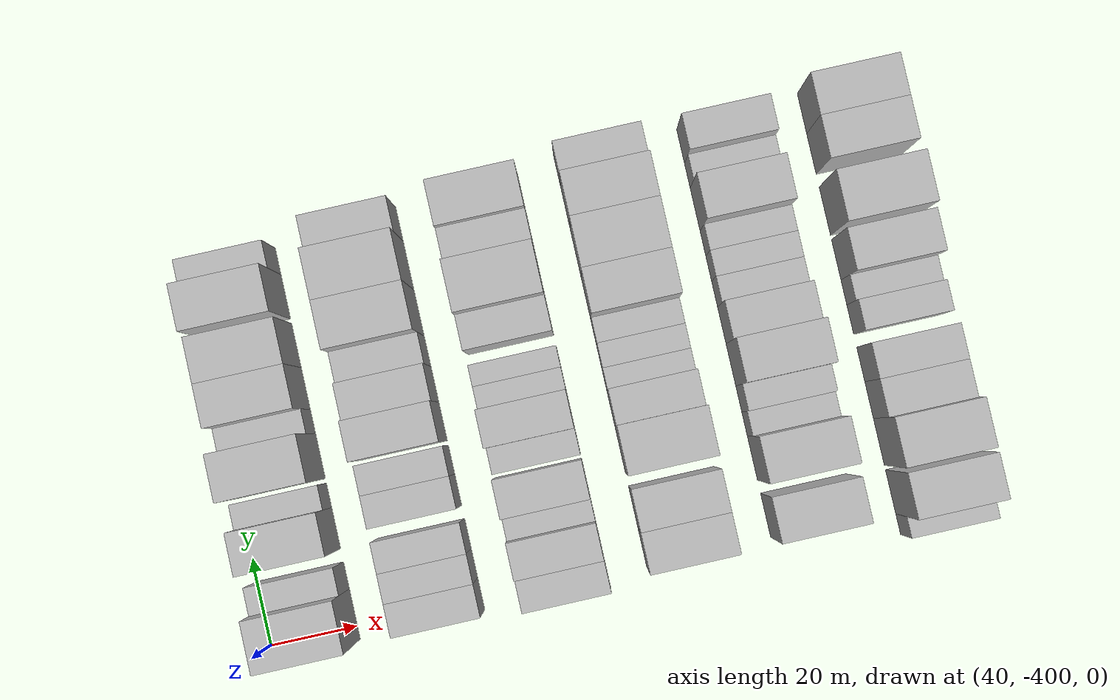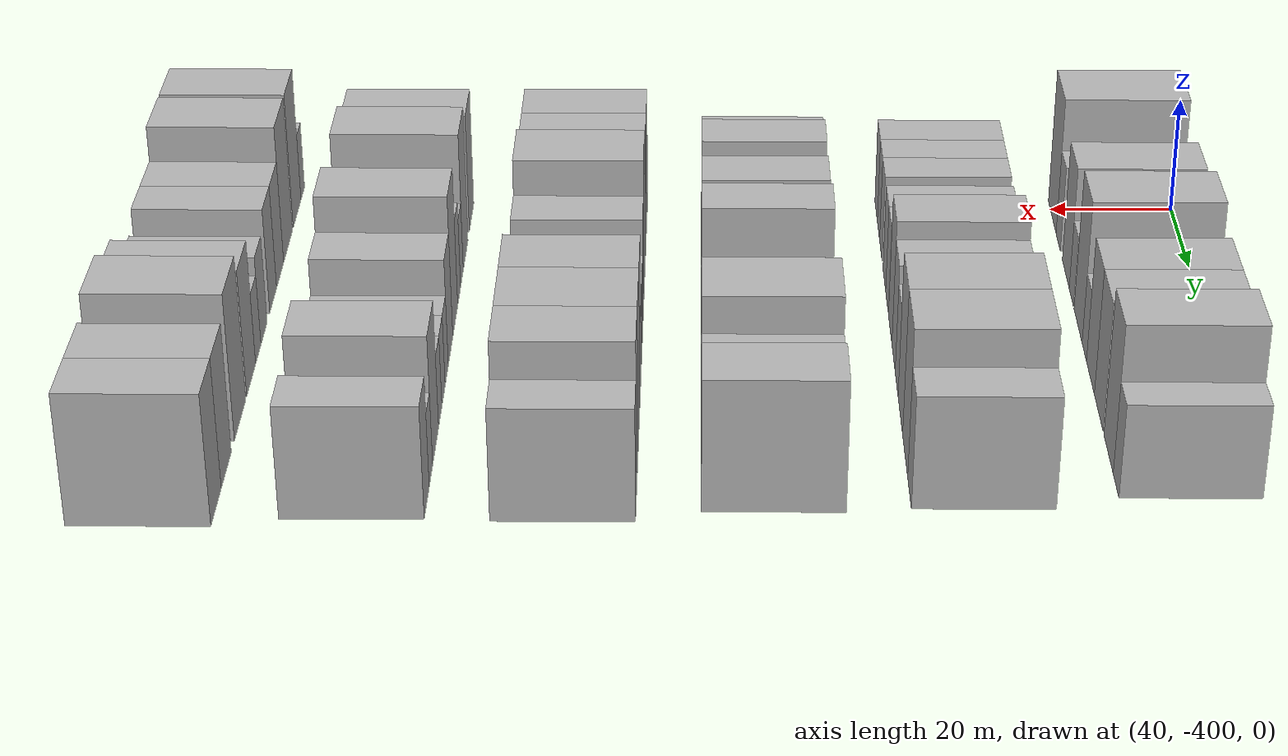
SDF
<sdf version="1.6">
 <world name="default">
  <model name="building_13">
   <static>1</static>
   <pose>50.0000 -397.2692 0 0.000000 0.000000 0.000000</pose>
   <link name="link">
    <pose>0 0 12.00 0 0 0</pose>
    <collision name="collision"><geometry><box><size>20.0000 11.6706 24.0000</size></box></geometry></collision>
    <visual name="visual">
     <cast_shadows>0</cast_shadows>
     <geometry><box><size>20.0000 11.6706 24.0000</size></box></geometry>
     <material>
      <script>
       <uri>model://HANNAS_wall/materials/scripts</uri>
       <uri>model://HANNAS_wall/materials/textures</uri>
       <name>vrc/HANNAS_wall</name>
      </script>
     </material>
    </visual>
   </link>
  </model>
  <model name="building_14">
   <static>1</static>
   <pose>50.0000 -388.3033 0 0.000000 0.000000 0.000000</pose>
   <link name="link">
    <pose>0 0 7.50 0 0 0</pose>
    <collision name="collision"><geometry><box><size>20.0000 6.2612 15.0000</size></box></geometry></collision>
    <visual name="visual">
     <cast_shadows>0</cast_shadows>
     <geometry><box><size>20.0000 6.2612 15.0000</size></box></geometry>
     <material>
      <script>
       <uri>model://HANNAS_wall/materials/scripts</uri>
       <uri>model://HANNAS_wall/materials/textures</uri>
       <name>vrc/HANNAS_wall</name>
      </script>
     </material>
    </visual>
   </link>
  </model>
  <model name="building_15">
   <static>1</static>
   <pose>50.0000 -377.3588 0 0.000000 0.000000 0.000000</pose>
   <link name="link">
    <pose>0 0 10.50 0 0 0</pose>
    <collision name="collision"><geometry><box><size>20.0000 9.6278 21.0000</size></box></geometry></collision>
    <visual name="visual">
     <cast_shadows>0</cast_shadows>
     <geometry><box><size>20.0000 9.6278 21.0000</size></box></geometry>
     <material>
      <script>
       <uri>model://HANNAS_wall/materials/scripts</uri>
       <uri>model://HANNAS_wall/materials/textures</uri>
       <name>vrc/HANNAS_wall</name>
      </script>
     </material>
    </visual>
   </link>
  </model>
  <model name="building_16">
   <static>1</static>
   <pose>50.0000 -369.7086 0 0.000000 0.000000 0.000000</pose>
   <link name="link">
    <pose>0 0 6.00 0 0 0</pose>
    <collision name="collision"><geometry><box><size>20.0000 5.6726 12.0000</size></box></geometry></collision>
    <visual name="visual">
     <cast_shadows>0</cast_shadows>
     <geometry><box><size>20.0000 5.6726 12.0000</size></box></geometry>
     <material>
      <script>
       <uri>model://HANNAS_wall/materials/scripts</uri>
       <uri>model://HANNAS_wall/materials/textures</uri>
       <name>vrc/HANNAS_wall</name>
      </script>
     </material>
    </visual>
   </link>
  </model>
  <model name="building_17">
   <static>1</static>
   <pose>50.0000 -360.5614 0 0.000000 0.000000 0.000000</pose>
   <link name="link">
    <pose>0 0 12.00 0 0 0</pose>
    <collision name="collision"><geometry><box><size>20.0000 10.6218 24.0000</size></box></geometry></collision>
    <visual name="visual">
     <cast_shadows>0</cast_shadows>
     <geometry><box><size>20.0000 10.6218 24.0000</size></box></geometry>
     <material>
      <script>
       <uri>model://HANNAS_wall/materials/scripts</uri>
       <uri>model://HANNAS_wall/materials/textures</uri>
       <name>vrc/HANNAS_wall</name>
      </script>
     </material>
    </visual>
   </link>
  </model>
  <model name="building_18">
   <static>1</static>
   <pose>50.0000 -352.4591 0 0.000000 0.000000 0.000000</pose>
   <link name="link">
    <pose>0 0 6.00 0 0 0</pose>
    <collision name="collision"><geometry><box><size>20.0000 5.5828 12.0000</size></box></geometry></collision>
    <visual name="visual">
     <cast_shadows>0</cast_shadows>
     <geometry><box><size>20.0000 5.5828 12.0000</size></box></geometry>
     <material>
      <script>
       <uri>model://HANNAS_wall/materials/scripts</uri>
       <uri>model://HANNAS_wall/materials/textures</uri>
       <name>vrc/HANNAS_wall</name>
      </script>
     </material>
    </visual>
   </link>
  </model>
  <model name="building_19">
   <static>1</static>
   <pose>50.0000 -344.7563 0 0.000000 0.000000 0.000000</pose>
   <link name="link">
    <pose>0 0 10.50 0 0 0</pose>
    <collision name="collision"><geometry><box><size>20.0000 9.8227 21.0000</size></box></geometry></collision>
    <visual name="visual">
     <cast_shadows>0</cast_shadows>
     <geometry><box><size>20.0000 9.8227 21.0000</size></box></geometry>
     <material>
      <script>
       <uri>model://HANNAS_wall/materials/scripts</uri>
       <uri>model://HANNAS_wall/materials/textures</uri>
       <name>vrc/HANNAS_wall</name>
      </script>
     </material>
    </visual>
   </link>
  </model>
  <model name="building_20">
   <static>1</static>
   <pose>50.0000 -334.6631 0 0.000000 0.000000 0.000000</pose>
   <link name="link">
    <pose>0 0 10.50 0 0 0</pose>
    <collision name="collision"><geometry><box><size>20.0000 10.3638 21.0000</size></box></geometry></collision>
    <visual name="visual">
     <cast_shadows>0</cast_shadows>
     <geometry><box><size>20.0000 10.3638 21.0000</size></box></geometry>
     <material>
      <script>
       <uri>model://HANNAS_wall/materials/scripts</uri>
       <uri>model://HANNAS_wall/materials/textures</uri>
       <name>vrc/HANNAS_wall</name>
      </script>
     </material>
    </visual>
   </link>
  </model>
  <model name="building_21">
   <static>1</static>
   <pose>50.0000 -323.2342 0 0.000000 0.000000 0.000000</pose>
   <link name="link">
    <pose>0 0 12.00 0 0 0</pose>
    <collision name="collision"><geometry><box><size>20.0000 10.4941 24.0000</size></box></geometry></collision>
    <visual name="visual">
     <cast_shadows>0</cast_shadows>
     <geometry><box><size>20.0000 10.4941 24.0000</size></box></geometry>
     <material>
      <script>
       <uri>model://HANNAS_wall/materials/scripts</uri>
       <uri>model://HANNAS_wall/materials/textures</uri>
       <name>vrc/HANNAS_wall</name>
      </script>
     </material>
    </visual>
   </link>
  </model>
  <model name="building_22">
   <static>1</static>
   <pose>50.0000 -314.8423 0 0.000000 0.000000 0.000000</pose>
   <link name="link">
    <pose>0 0 7.50 0 0 0</pose>
    <collision name="collision"><geometry><box><size>20.0000 6.2897 15.0000</size></box></geometry></collision>
    <visual name="visual">
     <cast_shadows>0</cast_shadows>
     <geometry><box><size>20.0000 6.2897 15.0000</size></box></geometry>
     <material>
      <script>
       <uri>model://HANNAS_wall/materials/scripts</uri>
       <uri>model://HANNAS_wall/materials/textures</uri>
       <name>vrc/HANNAS_wall</name>
      </script>
     </material>
    </visual>
   </link>
  </model>
  <model name="building_119">
   <static>1</static>
   <pose>79.0000 -399.1157 0 0.000000 0.000000 0.000000</pose>
   <link name="link">
    <pose>0 0 7.50 0 0 0</pose>
    <collision name="collision"><geometry><box><size>20.0000 7.4833 15.0000</size></box></geometry></collision>
    <visual name="visual">
     <cast_shadows>0</cast_shadows>
     <geometry><box><size>20.0000 7.4833 15.0000</size></box></geometry>
     <material>
      <script>
       <uri>model://HANNAS_wall/materials/scripts</uri>
       <uri>model://HANNAS_wall/materials/textures</uri>
       <name>vrc/HANNAS_wall</name>
      </script>
     </material>
    </visual>
   </link>
  </model>
  <model name="building_120">
   <static>1</static>
   <pose>79.0000 -392.0191 0 0.000000 0.000000 0.000000</pose>
   <link name="link">
    <pose>0 0 7.50 0 0 0</pose>
    <collision name="collision"><geometry><box><size>20.0000 6.7099 15.0000</size></box></geometry></collision>
    <visual name="visual">
     <cast_shadows>0</cast_shadows>
     <geometry><box><size>20.0000 6.7099 15.0000</size></box></geometry>
     <material>
      <script>
       <uri>model://HANNAS_wall/materials/scripts</uri>
       <uri>model://HANNAS_wall/materials/textures</uri>
       <name>vrc/HANNAS_wall</name>
      </script>
     </material>
    </visual>
   </link>
  </model>
  <model name="building_121">
   <static>1</static>
   <pose>79.0000 -385.1653 0 0.000000 0.000000 0.000000</pose>
   <link name="link">
    <pose>0 0 7.50 0 0 0</pose>
    <collision name="collision"><geometry><box><size>20.0000 6.9976 15.0000</size></box></geometry></collision>
    <visual name="visual">
     <cast_shadows>0</cast_shadows>
     <geometry><box><size>20.0000 6.9976 15.0000</size></box></geometry>
     <material>
      <script>
       <uri>model://HANNAS_wall/materials/scripts</uri>
       <uri>model://HANNAS_wall/materials/textures</uri>
       <name>vrc/HANNAS_wall</name>
      </script>
     </material>
    </visual>
   </link>
  </model>
  <model name="building_122">
   <static>1</static>
   <pose>79.0000 -374.9805 0 0.000000 0.000000 0.000000</pose>
   <link name="link">
    <pose>0 0 7.50 0 0 0</pose>
    <collision name="collision"><geometry><box><size>20.0000 7.3719 15.0000</size></box></geometry></collision>
    <visual name="visual">
     <cast_shadows>0</cast_shadows>
     <geometry><box><size>20.0000 7.3719 15.0000</size></box></geometry>
     <material>
      <script>
       <uri>model://HANNAS_wall/materials/scripts</uri>
       <uri>model://HANNAS_wall/materials/textures</uri>
       <name>vrc/HANNAS_wall</name>
      </script>
     </material>
    </visual>
   </link>
  </model>
  <model name="building_123">
   <static>1</static>
   <pose>79.0000 -367.9350 0 0.000000 0.000000 0.000000</pose>
   <link name="link">
    <pose>0 0 7.50 0 0 0</pose>
    <collision name="collision"><geometry><box><size>20.0000 6.7191 15.0000</size></box></geometry></collision>
    <visual name="visual">
     <cast_shadows>0</cast_shadows>
     <geometry><box><size>20.0000 6.7191 15.0000</size></box></geometry>
     <material>
      <script>
       <uri>model://HANNAS_wall/materials/scripts</uri>
       <uri>model://HANNAS_wall/materials/textures</uri>
       <name>vrc/HANNAS_wall</name>
      </script>
     </material>
    </visual>
   </link>
  </model>
  <model name="building_124">
   <static>1</static>
   <pose>79.0000 -359.0498 0 0.000000 0.000000 0.000000</pose>
   <link name="link">
    <pose>0 0 10.50 0 0 0</pose>
    <collision name="collision"><geometry><box><size>20.0000 9.0513 21.0000</size></box></geometry></collision>
    <visual name="visual">
     <cast_shadows>0</cast_shadows>
     <geometry><box><size>20.0000 9.0513 21.0000</size></box></geometry>
     <material>
      <script>
       <uri>model://HANNAS_wall/materials/scripts</uri>
       <uri>model://HANNAS_wall/materials/textures</uri>
       <name>vrc/HANNAS_wall</name>
      </script>
     </material>
    </visual>
   </link>
  </model>
  <model name="building_125">
   <static>1</static>
   <pose>79.0000 -350.3320 0 0.000000 0.000000 0.000000</pose>
   <link name="link">
    <pose>0 0 9.00 0 0 0</pose>
    <collision name="collision"><geometry><box><size>20.0000 8.3843 18.0000</size></box></geometry></collision>
    <visual name="visual">
     <cast_shadows>0</cast_shadows>
     <geometry><box><size>20.0000 8.3843 18.0000</size></box></geometry>
     <material>
      <script>
       <uri>model://HANNAS_wall/materials/scripts</uri>
       <uri>model://HANNAS_wall/materials/textures</uri>
       <name>vrc/HANNAS_wall</name>
      </script>
     </material>
    </visual>
   </link>
  </model>
  <model name="building_126">
   <static>1</static>
   <pose>79.0000 -342.5631 0 0.000000 0.000000 0.000000</pose>
   <link name="link">
    <pose>0 0 7.50 0 0 0</pose>
    <collision name="collision"><geometry><box><size>20.0000 7.1534 15.0000</size></box></geometry></collision>
    <visual name="visual">
     <cast_shadows>0</cast_shadows>
     <geometry><box><size>20.0000 7.1534 15.0000</size></box></geometry>
     <material>
      <script>
       <uri>model://HANNAS_wall/materials/scripts</uri>
       <uri>model://HANNAS_wall/materials/textures</uri>
       <name>vrc/HANNAS_wall</name>
      </script>
     </material>
    </visual>
   </link>
  </model>
  <model name="building_127">
   <static>1</static>
   <pose>79.0000 -333.5656 0 0.000000 0.000000 0.000000</pose>
   <link name="link">
    <pose>0 0 12.00 0 0 0</pose>
    <collision name="collision"><geometry><box><size>20.0000 10.8417 24.0000</size></box></geometry></collision>
    <visual name="visual">
     <cast_shadows>0</cast_shadows>
     <geometry><box><size>20.0000 10.8417 24.0000</size></box></geometry>
     <material>
      <script>
       <uri>model://HANNAS_wall/materials/scripts</uri>
       <uri>model://HANNAS_wall/materials/textures</uri>
       <name>vrc/HANNAS_wall</name>
      </script>
     </material>
    </visual>
   </link>
  </model>
  <model name="building_128">
   <static>1</static>
   <pose>79.0000 -322.3941 0 0.000000 0.000000 0.000000</pose>
   <link name="link">
    <pose>0 0 12.00 0 0 0</pose>
    <collision name="collision"><geometry><box><size>20.0000 11.5013 24.0000</size></box></geometry></collision>
    <visual name="visual">
     <cast_shadows>0</cast_shadows>
     <geometry><box><size>20.0000 11.5013 24.0000</size></box></geometry>
     <material>
      <script>
       <uri>model://HANNAS_wall/materials/scripts</uri>
       <uri>model://HANNAS_wall/materials/textures</uri>
       <name>vrc/HANNAS_wall</name>
      </script>
     </material>
    </visual>
   </link>
  </model>
  <model name="building_129">
   <static>1</static>
   <pose>79.0000 -312.6536 0 0.000000 0.000000 0.000000</pose>
   <link name="link">
    <pose>0 0 9.00 0 0 0</pose>
    <collision name="collision"><geometry><box><size>20.0000 7.9798 18.0000</size></box></geometry></collision>
    <visual name="visual">
     <cast_shadows>0</cast_shadows>
     <geometry><box><size>20.0000 7.9798 18.0000</size></box></geometry>
     <material>
      <script>
       <uri>model://HANNAS_wall/materials/scripts</uri>
       <uri>model://HANNAS_wall/materials/textures</uri>
       <name>vrc/HANNAS_wall</name>
      </script>
     </material>
    </visual>
   </link>
  </model>
  <model name="building_232">
   <static>1</static>
   <pose>108.0000 -400.2445 0 0.000000 0.000000 0.000000</pose>
   <link name="link">
    <pose>0 0 7.50 0 0 0</pose>
    <collision name="collision"><geometry><box><size>20.0000 7.4716 15.0000</size></box></geometry></collision>
    <visual name="visual">
     <cast_shadows>0</cast_shadows>
     <geometry><box><size>20.0000 7.4716 15.0000</size></box></geometry>
     <material>
      <script>
       <uri>model://HANNAS_wall/materials/scripts</uri>
       <uri>model://HANNAS_wall/materials/textures</uri>
       <name>vrc/HANNAS_wall</name>
      </script>
     </material>
    </visual>
   </link>
  </model>
  <model name="building_233">
   <static>1</static>
   <pose>108.0000 -392.3242 0 0.000000 0.000000 0.000000</pose>
   <link name="link">
    <pose>0 0 9.00 0 0 0</pose>
    <collision name="collision"><geometry><box><size>20.0000 8.3691 18.0000</size></box></geometry></collision>
    <visual name="visual">
     <cast_shadows>0</cast_shadows>
     <geometry><box><size>20.0000 8.3691 18.0000</size></box></geometry>
     <material>
      <script>
       <uri>model://HANNAS_wall/materials/scripts</uri>
       <uri>model://HANNAS_wall/materials/textures</uri>
       <name>vrc/HANNAS_wall</name>
      </script>
     </material>
    </visual>
   </link>
  </model>
  <model name="building_234">
   <static>1</static>
   <pose>108.0000 -385.5349 0 0.000000 0.000000 0.000000</pose>
   <link name="link">
    <pose>0 0 6.00 0 0 0</pose>
    <collision name="collision"><geometry><box><size>20.0000 5.2095 12.0000</size></box></geometry></collision>
    <visual name="visual">
     <cast_shadows>0</cast_shadows>
     <geometry><box><size>20.0000 5.2095 12.0000</size></box></geometry>
     <material>
      <script>
       <uri>model://HANNAS_wall/materials/scripts</uri>
       <uri>model://HANNAS_wall/materials/textures</uri>
       <name>vrc/HANNAS_wall</name>
      </script>
     </material>
    </visual>
   </link>
  </model>
  <model name="building_235">
   <static>1</static>
   <pose>108.0000 -378.5450 0 0.000000 0.000000 0.000000</pose>
   <link name="link">
    <pose>0 0 9.00 0 0 0</pose>
    <collision name="collision"><geometry><box><size>20.0000 8.7703 18.0000</size></box></geometry></collision>
    <visual name="visual">
     <cast_shadows>0</cast_shadows>
     <geometry><box><size>20.0000 8.7703 18.0000</size></box></geometry>
     <material>
      <script>
       <uri>model://HANNAS_wall/materials/scripts</uri>
       <uri>model://HANNAS_wall/materials/textures</uri>
       <name>vrc/HANNAS_wall</name>
      </script>
     </material>
    </visual>
   </link>
  </model>
  <model name="building_236">
   <static>1</static>
   <pose>108.0000 -370.1652 0 0.000000 0.000000 0.000000</pose>
   <link name="link">
    <pose>0 0 6.00 0 0 0</pose>
    <collision name="collision"><geometry><box><size>20.0000 5.9893 12.0000</size></box></geometry></collision>
    <visual name="visual">
     <cast_shadows>0</cast_shadows>
     <geometry><box><size>20.0000 5.9893 12.0000</size></box></geometry>
     <material>
      <script>
       <uri>model://HANNAS_wall/materials/scripts</uri>
       <uri>model://HANNAS_wall/materials/textures</uri>
       <name>vrc/HANNAS_wall</name>
      </script>
     </material>
    </visual>
   </link>
  </model>
  <model name="building_237">
   <static>1</static>
   <pose>108.0000 -362.8902 0 0.000000 0.000000 0.000000</pose>
   <link name="link">
    <pose>0 0 10.50 0 0 0</pose>
    <collision name="collision"><geometry><box><size>20.0000 8.5607 21.0000</size></box></geometry></collision>
    <visual name="visual">
     <cast_shadows>0</cast_shadows>
     <geometry><box><size>20.0000 8.5607 21.0000</size></box></geometry>
     <material>
      <script>
       <uri>model://HANNAS_wall/materials/scripts</uri>
       <uri>model://HANNAS_wall/materials/textures</uri>
       <name>vrc/HANNAS_wall</name>
      </script>
     </material>
    </visual>
   </link>
  </model>
  <model name="building_238">
   <static>1</static>
   <pose>108.0000 -355.9589 0 0.000000 0.000000 0.000000</pose>
   <link name="link">
    <pose>0 0 6.00 0 0 0</pose>
    <collision name="collision"><geometry><box><size>20.0000 5.3019 12.0000</size></box></geometry></collision>
    <visual name="visual">
     <cast_shadows>0</cast_shadows>
     <geometry><box><size>20.0000 5.3019 12.0000</size></box></geometry>
     <material>
      <script>
       <uri>model://HANNAS_wall/materials/scripts</uri>
       <uri>model://HANNAS_wall/materials/textures</uri>
       <name>vrc/HANNAS_wall</name>
      </script>
     </material>
    </visual>
   </link>
  </model>
  <model name="building_239">
   <static>1</static>
   <pose>108.0000 -350.8704 0 0.000000 0.000000 0.000000</pose>
   <link name="link">
    <pose>0 0 6.00 0 0 0</pose>
    <collision name="collision"><geometry><box><size>20.0000 4.8751 12.0000</size></box></geometry></collision>
    <visual name="visual">
     <cast_shadows>0</cast_shadows>
     <geometry><box><size>20.0000 4.8751 12.0000</size></box></geometry>
     <material>
      <script>
       <uri>model://HANNAS_wall/materials/scripts</uri>
       <uri>model://HANNAS_wall/materials/textures</uri>
       <name>vrc/HANNAS_wall</name>
      </script>
     </material>
    </visual>
   </link>
  </model>
  <model name="building_240">
   <static>1</static>
   <pose>108.0000 -341.4244 0 0.000000 0.000000 0.000000</pose>
   <link name="link">
    <pose>0 0 9.00 0 0 0</pose>
    <collision name="collision"><geometry><box><size>20.0000 8.0170 18.0000</size></box></geometry></collision>
    <visual name="visual">
     <cast_shadows>0</cast_shadows>
     <geometry><box><size>20.0000 8.0170 18.0000</size></box></geometry>
     <material>
      <script>
       <uri>model://HANNAS_wall/materials/scripts</uri>
       <uri>model://HANNAS_wall/materials/textures</uri>
       <name>vrc/HANNAS_wall</name>
      </script>
     </material>
    </visual>
   </link>
  </model>
  <model name="building_241">
   <static>1</static>
   <pose>108.0000 -331.5512 0 0.000000 0.000000 0.000000</pose>
   <link name="link">
    <pose>0 0 12.00 0 0 0</pose>
    <collision name="collision"><geometry><box><size>20.0000 11.7294 24.0000</size></box></geometry></collision>
    <visual name="visual">
     <cast_shadows>0</cast_shadows>
     <geometry><box><size>20.0000 11.7294 24.0000</size></box></geometry>
     <material>
      <script>
       <uri>model://HANNAS_wall/materials/scripts</uri>
       <uri>model://HANNAS_wall/materials/textures</uri>
       <name>vrc/HANNAS_wall</name>
      </script>
     </material>
    </visual>
   </link>
  </model>
  <model name="building_242">
   <static>1</static>
   <pose>108.0000 -321.8382 0 0.000000 0.000000 0.000000</pose>
   <link name="link">
    <pose>0 0 9.00 0 0 0</pose>
    <collision name="collision"><geometry><box><size>20.0000 7.6966 18.0000</size></box></geometry></collision>
    <visual name="visual">
     <cast_shadows>0</cast_shadows>
     <geometry><box><size>20.0000 7.6966 18.0000</size></box></geometry>
     <material>
      <script>
       <uri>model://HANNAS_wall/materials/scripts</uri>
       <uri>model://HANNAS_wall/materials/textures</uri>
       <name>vrc/HANNAS_wall</name>
      </script>
     </material>
    </visual>
   </link>
  </model>
  <model name="building_243">
   <static>1</static>
   <pose>108.0000 -312.8249 0 0.000000 0.000000 0.000000</pose>
   <link name="link">
    <pose>0 0 10.50 0 0 0</pose>
    <collision name="collision"><geometry><box><size>20.0000 10.3302 21.0000</size></box></geometry></collision>
    <visual name="visual">
     <cast_shadows>0</cast_shadows>
     <geometry><box><size>20.0000 10.3302 21.0000</size></box></geometry>
     <material>
      <script>
       <uri>model://HANNAS_wall/materials/scripts</uri>
       <uri>model://HANNAS_wall/materials/textures</uri>
       <name>vrc/HANNAS_wall</name>
      </script>
     </material>
    </visual>
   </link>
  </model>
  <model name="building_341">
   <static>1</static>
   <pose>137.0000 -396.7824 0 0.000000 0.000000 0.000000</pose>
   <link name="link">
    <pose>0 0 10.50 0 0 0</pose>
    <collision name="collision"><geometry><box><size>20.0000 9.2299 21.0000</size></box></geometry></collision>
    <visual name="visual">
     <cast_shadows>0</cast_shadows>
     <geometry><box><size>20.0000 9.2299 21.0000</size></box></geometry>
     <material>
      <script>
       <uri>model://HANNAS_wall/materials/scripts</uri>
       <uri>model://HANNAS_wall/materials/textures</uri>
       <name>vrc/HANNAS_wall</name>
      </script>
     </material>
    </visual>
   </link>
  </model>
  <model name="building_342">
   <static>1</static>
   <pose>137.0000 -387.4066 0 0.000000 0.000000 0.000000</pose>
   <link name="link">
    <pose>0 0 10.50 0 0 0</pose>
    <collision name="collision"><geometry><box><size>20.0000 9.5217 21.0000</size></box></geometry></collision>
    <visual name="visual">
     <cast_shadows>0</cast_shadows>
     <geometry><box><size>20.0000 9.5217 21.0000</size></box></geometry>
     <material>
      <script>
       <uri>model://HANNAS_wall/materials/scripts</uri>
       <uri>model://HANNAS_wall/materials/textures</uri>
       <name>vrc/HANNAS_wall</name>
      </script>
     </material>
    </visual>
   </link>
  </model>
  <model name="building_343">
   <static>1</static>
   <pose>137.0000 -374.1303 0 0.000000 0.000000 0.000000</pose>
   <link name="link">
    <pose>0 0 12.00 0 0 0</pose>
    <collision name="collision"><geometry><box><size>20.0000 11.0310 24.0000</size></box></geometry></collision>
    <visual name="visual">
     <cast_shadows>0</cast_shadows>
     <geometry><box><size>20.0000 11.0310 24.0000</size></box></geometry>
     <material>
      <script>
       <uri>model://HANNAS_wall/materials/scripts</uri>
       <uri>model://HANNAS_wall/materials/textures</uri>
       <name>vrc/HANNAS_wall</name>
      </script>
     </material>
    </visual>
   </link>
  </model>
  <model name="building_344">
   <static>1</static>
   <pose>137.0000 -364.5501 0 0.000000 0.000000 0.000000</pose>
   <link name="link">
    <pose>0 0 9.00 0 0 0</pose>
    <collision name="collision"><geometry><box><size>20.0000 8.1293 18.0000</size></box></geometry></collision>
    <visual name="visual">
     <cast_shadows>0</cast_shadows>
     <geometry><box><size>20.0000 8.1293 18.0000</size></box></geometry>
     <material>
      <script>
       <uri>model://HANNAS_wall/materials/scripts</uri>
       <uri>model://HANNAS_wall/materials/textures</uri>
       <name>vrc/HANNAS_wall</name>
      </script>
     </material>
    </visual>
   </link>
  </model>
  <model name="building_345">
   <static>1</static>
   <pose>137.0000 -358.0268 0 0.000000 0.000000 0.000000</pose>
   <link name="link">
    <pose>0 0 6.00 0 0 0</pose>
    <collision name="collision"><geometry><box><size>20.0000 4.9173 12.0000</size></box></geometry></collision>
    <visual name="visual">
     <cast_shadows>0</cast_shadows>
     <geometry><box><size>20.0000 4.9173 12.0000</size></box></geometry>
     <material>
      <script>
       <uri>model://HANNAS_wall/materials/scripts</uri>
       <uri>model://HANNAS_wall/materials/textures</uri>
       <name>vrc/HANNAS_wall</name>
      </script>
     </material>
    </visual>
   </link>
  </model>
  <model name="building_346">
   <static>1</static>
   <pose>137.0000 -352.7481 0 0.000000 0.000000 0.000000</pose>
   <link name="link">
    <pose>0 0 6.00 0 0 0</pose>
    <collision name="collision"><geometry><box><size>20.0000 5.6401 12.0000</size></box></geometry></collision>
    <visual name="visual">
     <cast_shadows>0</cast_shadows>
     <geometry><box><size>20.0000 5.6401 12.0000</size></box></geometry>
     <material>
      <script>
       <uri>model://HANNAS_wall/materials/scripts</uri>
       <uri>model://HANNAS_wall/materials/textures</uri>
       <name>vrc/HANNAS_wall</name>
      </script>
     </material>
    </visual>
   </link>
  </model>
  <model name="building_347">
   <static>1</static>
   <pose>137.0000 -347.0196 0 0.000000 0.000000 0.000000</pose>
   <link name="link">
    <pose>0 0 6.00 0 0 0</pose>
    <collision name="collision"><geometry><box><size>20.0000 5.8169 12.0000</size></box></geometry></collision>
    <visual name="visual">
     <cast_shadows>0</cast_shadows>
     <geometry><box><size>20.0000 5.8169 12.0000</size></box></geometry>
     <material>
      <script>
       <uri>model://HANNAS_wall/materials/scripts</uri>
       <uri>model://HANNAS_wall/materials/textures</uri>
       <name>vrc/HANNAS_wall</name>
      </script>
     </material>
    </visual>
   </link>
  </model>
  <model name="building_348">
   <static>1</static>
   <pose>137.0000 -339.0950 0 0.000000 0.000000 0.000000</pose>
   <link name="link">
    <pose>0 0 12.00 0 0 0</pose>
    <collision name="collision"><geometry><box><size>20.0000 10.0323 24.0000</size></box></geometry></collision>
    <visual name="visual">
     <cast_shadows>0</cast_shadows>
     <geometry><box><size>20.0000 10.0323 24.0000</size></box></geometry>
     <material>
      <script>
       <uri>model://HANNAS_wall/materials/scripts</uri>
       <uri>model://HANNAS_wall/materials/textures</uri>
       <name>vrc/HANNAS_wall</name>
      </script>
     </material>
    </visual>
   </link>
  </model>
  <model name="building_349">
   <static>1</static>
   <pose>137.0000 -328.3923 0 0.000000 0.000000 0.000000</pose>
   <link name="link">
    <pose>0 0 12.00 0 0 0</pose>
    <collision name="collision"><geometry><box><size>20.0000 11.3729 24.0000</size></box></geometry></collision>
    <visual name="visual">
     <cast_shadows>0</cast_shadows>
     <geometry><box><size>20.0000 11.3729 24.0000</size></box></geometry>
     <material>
      <script>
       <uri>model://HANNAS_wall/materials/scripts</uri>
       <uri>model://HANNAS_wall/materials/textures</uri>
       <name>vrc/HANNAS_wall</name>
      </script>
     </material>
    </visual>
   </link>
  </model>
  <model name="building_350">
   <static>1</static>
   <pose>137.0000 -317.7055 0 0.000000 0.000000 0.000000</pose>
   <link name="link">
    <pose>0 0 12.00 0 0 0</pose>
    <collision name="collision"><geometry><box><size>20.0000 10.0008 24.0000</size></box></geometry></collision>
    <visual name="visual">
     <cast_shadows>0</cast_shadows>
     <geometry><box><size>20.0000 10.0008 24.0000</size></box></geometry>
     <material>
      <script>
       <uri>model://HANNAS_wall/materials/scripts</uri>
       <uri>model://HANNAS_wall/materials/textures</uri>
       <name>vrc/HANNAS_wall</name>
      </script>
     </material>
    </visual>
   </link>
  </model>
  <model name="building_351">
   <static>1</static>
   <pose>137.0000 -308.8497 0 0.000000 0.000000 0.000000</pose>
   <link name="link">
    <pose>0 0 9.00 0 0 0</pose>
    <collision name="collision"><geometry><box><size>20.0000 7.7107 18.0000</size></box></geometry></collision>
    <visual name="visual">
     <cast_shadows>0</cast_shadows>
     <geometry><box><size>20.0000 7.7107 18.0000</size></box></geometry>
     <material>
      <script>
       <uri>model://HANNAS_wall/materials/scripts</uri>
       <uri>model://HANNAS_wall/materials/textures</uri>
       <name>vrc/HANNAS_wall</name>
      </script>
     </material>
    </visual>
   </link>
  </model>
  <model name="building_457">
   <static>1</static>
   <pose>166.0000 -396.0314 0 0.000000 0.000000 0.000000</pose>
   <link name="link">
    <pose>0 0 10.50 0 0 0</pose>
    <collision name="collision"><geometry><box><size>20.0000 10.2457 21.0000</size></box></geometry></collision>
    <visual name="visual">
     <cast_shadows>0</cast_shadows>
     <geometry><box><size>20.0000 10.2457 21.0000</size></box></geometry>
     <material>
      <script>
       <uri>model://HANNAS_wall/materials/scripts</uri>
       <uri>model://HANNAS_wall/materials/textures</uri>
       <name>vrc/HANNAS_wall</name>
      </script>
     </material>
    </visual>
   </link>
  </model>
  <model name="building_458">
   <static>1</static>
   <pose>166.0000 -382.7401 0 0.000000 0.000000 0.000000</pose>
   <link name="link">
    <pose>0 0 12.00 0 0 0</pose>
    <collision name="collision"><geometry><box><size>20.0000 10.3368 24.0000</size></box></geometry></collision>
    <visual name="visual">
     <cast_shadows>0</cast_shadows>
     <geometry><box><size>20.0000 10.3368 24.0000</size></box></geometry>
     <material>
      <script>
       <uri>model://HANNAS_wall/materials/scripts</uri>
       <uri>model://HANNAS_wall/materials/textures</uri>
       <name>vrc/HANNAS_wall</name>
      </script>
     </material>
    </visual>
   </link>
  </model>
  <model name="building_459">
   <static>1</static>
   <pose>166.0000 -374.7483 0 0.000000 0.000000 0.000000</pose>
   <link name="link">
    <pose>0 0 6.00 0 0 0</pose>
    <collision name="collision"><geometry><box><size>20.0000 5.6467 12.0000</size></box></geometry></collision>
    <visual name="visual">
     <cast_shadows>0</cast_shadows>
     <geometry><box><size>20.0000 5.6467 12.0000</size></box></geometry>
     <material>
      <script>
       <uri>model://HANNAS_wall/materials/scripts</uri>
       <uri>model://HANNAS_wall/materials/textures</uri>
       <name>vrc/HANNAS_wall</name>
      </script>
     </material>
    </visual>
   </link>
  </model>
  <model name="building_460">
   <static>1</static>
   <pose>166.0000 -368.8872 0 0.000000 0.000000 0.000000</pose>
   <link name="link">
    <pose>0 0 7.50 0 0 0</pose>
    <collision name="collision"><geometry><box><size>20.0000 6.0756 15.0000</size></box></geometry></collision>
    <visual name="visual">
     <cast_shadows>0</cast_shadows>
     <geometry><box><size>20.0000 6.0756 15.0000</size></box></geometry>
     <material>
      <script>
       <uri>model://HANNAS_wall/materials/scripts</uri>
       <uri>model://HANNAS_wall/materials/textures</uri>
       <name>vrc/HANNAS_wall</name>
      </script>
     </material>
    </visual>
   </link>
  </model>
  <model name="building_461">
   <static>1</static>
   <pose>166.0000 -360.9198 0 0.000000 0.000000 0.000000</pose>
   <link name="link">
    <pose>0 0 12.00 0 0 0</pose>
    <collision name="collision"><geometry><box><size>20.0000 9.8593 24.0000</size></box></geometry></collision>
    <visual name="visual">
     <cast_shadows>0</cast_shadows>
     <geometry><box><size>20.0000 9.8593 24.0000</size></box></geometry>
     <material>
      <script>
       <uri>model://HANNAS_wall/materials/scripts</uri>
       <uri>model://HANNAS_wall/materials/textures</uri>
       <name>vrc/HANNAS_wall</name>
      </script>
     </material>
    </visual>
   </link>
  </model>
  <model name="building_462">
   <static>1</static>
   <pose>166.0000 -351.6529 0 0.000000 0.000000 0.000000</pose>
   <link name="link">
    <pose>0 0 9.00 0 0 0</pose>
    <collision name="collision"><geometry><box><size>20.0000 8.6744 18.0000</size></box></geometry></collision>
    <visual name="visual">
     <cast_shadows>0</cast_shadows>
     <geometry><box><size>20.0000 8.6744 18.0000</size></box></geometry>
     <material>
      <script>
       <uri>model://HANNAS_wall/materials/scripts</uri>
       <uri>model://HANNAS_wall/materials/textures</uri>
       <name>vrc/HANNAS_wall</name>
      </script>
     </material>
    </visual>
   </link>
  </model>
  <model name="building_463">
   <static>1</static>
   <pose>166.0000 -344.3163 0 0.000000 0.000000 0.000000</pose>
   <link name="link">
    <pose>0 0 6.00 0 0 0</pose>
    <collision name="collision"><geometry><box><size>20.0000 5.9987 12.0000</size></box></geometry></collision>
    <visual name="visual">
     <cast_shadows>0</cast_shadows>
     <geometry><box><size>20.0000 5.9987 12.0000</size></box></geometry>
     <material>
      <script>
       <uri>model://HANNAS_wall/materials/scripts</uri>
       <uri>model://HANNAS_wall/materials/textures</uri>
       <name>vrc/HANNAS_wall</name>
      </script>
     </material>
    </visual>
   </link>
  </model>
  <model name="building_464">
   <static>1</static>
   <pose>166.0000 -338.3435 0 0.000000 0.000000 0.000000</pose>
   <link name="link">
    <pose>0 0 6.00 0 0 0</pose>
    <collision name="collision"><geometry><box><size>20.0000 5.9469 12.0000</size></box></geometry></collision>
    <visual name="visual">
     <cast_shadows>0</cast_shadows>
     <geometry><box><size>20.0000 5.9469 12.0000</size></box></geometry>
     <material>
      <script>
       <uri>model://HANNAS_wall/materials/scripts</uri>
       <uri>model://HANNAS_wall/materials/textures</uri>
       <name>vrc/HANNAS_wall</name>
      </script>
     </material>
    </visual>
   </link>
  </model>
  <model name="building_465">
   <static>1</static>
   <pose>166.0000 -332.3921 0 0.000000 0.000000 0.000000</pose>
   <link name="link">
    <pose>0 0 6.00 0 0 0</pose>
    <collision name="collision"><geometry><box><size>20.0000 5.9559 12.0000</size></box></geometry></collision>
    <visual name="visual">
     <cast_shadows>0</cast_shadows>
     <geometry><box><size>20.0000 5.9559 12.0000</size></box></geometry>
     <material>
      <script>
       <uri>model://HANNAS_wall/materials/scripts</uri>
       <uri>model://HANNAS_wall/materials/textures</uri>
       <name>vrc/HANNAS_wall</name>
      </script>
     </material>
    </visual>
   </link>
  </model>
  <model name="building_466">
   <static>1</static>
   <pose>166.0000 -324.3212 0 0.000000 0.000000 0.000000</pose>
   <link name="link">
    <pose>0 0 10.50 0 0 0</pose>
    <collision name="collision"><geometry><box><size>20.0000 10.1859 21.0000</size></box></geometry></collision>
    <visual name="visual">
     <cast_shadows>0</cast_shadows>
     <geometry><box><size>20.0000 10.1859 21.0000</size></box></geometry>
     <material>
      <script>
       <uri>model://HANNAS_wall/materials/scripts</uri>
       <uri>model://HANNAS_wall/materials/textures</uri>
       <name>vrc/HANNAS_wall</name>
      </script>
     </material>
    </visual>
   </link>
  </model>
  <model name="building_467">
   <static>1</static>
   <pose>166.0000 -316.3395 0 0.000000 0.000000 0.000000</pose>
   <link name="link">
    <pose>0 0 6.00 0 0 0</pose>
    <collision name="collision"><geometry><box><size>20.0000 5.7774 12.0000</size></box></geometry></collision>
    <visual name="visual">
     <cast_shadows>0</cast_shadows>
     <geometry><box><size>20.0000 5.7774 12.0000</size></box></geometry>
     <material>
      <script>
       <uri>model://HANNAS_wall/materials/scripts</uri>
       <uri>model://HANNAS_wall/materials/textures</uri>
       <name>vrc/HANNAS_wall</name>
      </script>
     </material>
    </visual>
   </link>
  </model>
  <model name="building_468">
   <static>1</static>
   <pose>166.0000 -309.3866 0 0.000000 0.000000 0.000000</pose>
   <link name="link">
    <pose>0 0 9.00 0 0 0</pose>
    <collision name="collision"><geometry><box><size>20.0000 8.1285 18.0000</size></box></geometry></collision>
    <visual name="visual">
     <cast_shadows>0</cast_shadows>
     <geometry><box><size>20.0000 8.1285 18.0000</size></box></geometry>
     <material>
      <script>
       <uri>model://HANNAS_wall/materials/scripts</uri>
       <uri>model://HANNAS_wall/materials/textures</uri>
       <name>vrc/HANNAS_wall</name>
      </script>
     </material>
    </visual>
   </link>
  </model>
  <model name="building_575">
   <static>1</static>
   <pose>195.0000 -404.7035 0 0.000000 0.000000 0.000000</pose>
   <link name="link">
    <pose>0 0 6.00 0 0 0</pose>
    <collision name="collision"><geometry><box><size>20.0000 4.8716 12.0000</size></box></geometry></collision>
    <visual name="visual">
     <cast_shadows>0</cast_shadows>
     <geometry><box><size>20.0000 4.8716 12.0000</size></box></geometry>
     <material>
      <script>
       <uri>model://HANNAS_wall/materials/scripts</uri>
       <uri>model://HANNAS_wall/materials/textures</uri>
       <name>vrc/HANNAS_wall</name>
      </script>
     </material>
    </visual>
   </link>
  </model>
  <model name="building_576">
   <static>1</static>
   <pose>195.0000 -397.1434 0 0.000000 0.000000 0.000000</pose>
   <link name="link">
    <pose>0 0 12.00 0 0 0</pose>
    <collision name="collision"><geometry><box><size>20.0000 10.2486 24.0000</size></box></geometry></collision>
    <visual name="visual">
     <cast_shadows>0</cast_shadows>
     <geometry><box><size>20.0000 10.2486 24.0000</size></box></geometry>
     <material>
      <script>
       <uri>model://HANNAS_wall/materials/scripts</uri>
       <uri>model://HANNAS_wall/materials/textures</uri>
       <name>vrc/HANNAS_wall</name>
      </script>
     </material>
    </visual>
   </link>
  </model>
  <model name="building_577">
   <static>1</static>
   <pose>195.0000 -385.4842 0 0.000000 0.000000 0.000000</pose>
   <link name="link">
    <pose>0 0 12.00 0 0 0</pose>
    <collision name="collision"><geometry><box><size>20.0000 11.0698 24.0000</size></box></geometry></collision>
    <visual name="visual">
     <cast_shadows>0</cast_shadows>
     <geometry><box><size>20.0000 11.0698 24.0000</size></box></geometry>
     <material>
      <script>
       <uri>model://HANNAS_wall/materials/scripts</uri>
       <uri>model://HANNAS_wall/materials/textures</uri>
       <name>vrc/HANNAS_wall</name>
      </script>
     </material>
    </visual>
   </link>
  </model>
  <model name="building_578">
   <static>1</static>
   <pose>195.0000 -375.6730 0 0.000000 0.000000 0.000000</pose>
   <link name="link">
    <pose>0 0 9.00 0 0 0</pose>
    <collision name="collision"><geometry><box><size>20.0000 8.5525 18.0000</size></box></geometry></collision>
    <visual name="visual">
     <cast_shadows>0</cast_shadows>
     <geometry><box><size>20.0000 8.5525 18.0000</size></box></geometry>
     <material>
      <script>
       <uri>model://HANNAS_wall/materials/scripts</uri>
       <uri>model://HANNAS_wall/materials/textures</uri>
       <name>vrc/HANNAS_wall</name>
      </script>
     </material>
    </visual>
   </link>
  </model>
  <model name="building_579">
   <static>1</static>
   <pose>195.0000 -367.3677 0 0.000000 0.000000 0.000000</pose>
   <link name="link">
    <pose>0 0 9.00 0 0 0</pose>
    <collision name="collision"><geometry><box><size>20.0000 8.0581 18.0000</size></box></geometry></collision>
    <visual name="visual">
     <cast_shadows>0</cast_shadows>
     <geometry><box><size>20.0000 8.0581 18.0000</size></box></geometry>
     <material>
      <script>
       <uri>model://HANNAS_wall/materials/scripts</uri>
       <uri>model://HANNAS_wall/materials/textures</uri>
       <name>vrc/HANNAS_wall</name>
      </script>
     </material>
    </visual>
   </link>
  </model>
  <model name="building_580">
   <static>1</static>
   <pose>195.0000 -356.8593 0 0.000000 0.000000 0.000000</pose>
   <link name="link">
    <pose>0 0 7.50 0 0 0</pose>
    <collision name="collision"><geometry><box><size>20.0000 6.9588 15.0000</size></box></geometry></collision>
    <visual name="visual">
     <cast_shadows>0</cast_shadows>
     <geometry><box><size>20.0000 6.9588 15.0000</size></box></geometry>
     <material>
      <script>
       <uri>model://HANNAS_wall/materials/scripts</uri>
       <uri>model://HANNAS_wall/materials/textures</uri>
       <name>vrc/HANNAS_wall</name>
      </script>
     </material>
    </visual>
   </link>
  </model>
  <model name="building_581">
   <static>1</static>
   <pose>195.0000 -350.4398 0 0.000000 0.000000 0.000000</pose>
   <link name="link">
    <pose>0 0 6.00 0 0 0</pose>
    <collision name="collision"><geometry><box><size>20.0000 5.8801 12.0000</size></box></geometry></collision>
    <visual name="visual">
     <cast_shadows>0</cast_shadows>
     <geometry><box><size>20.0000 5.8801 12.0000</size></box></geometry>
     <material>
      <script>
       <uri>model://HANNAS_wall/materials/scripts</uri>
       <uri>model://HANNAS_wall/materials/textures</uri>
       <name>vrc/HANNAS_wall</name>
      </script>
     </material>
    </visual>
   </link>
  </model>
  <model name="building_582">
   <static>1</static>
   <pose>195.0000 -342.7468 0 0.000000 0.000000 0.000000</pose>
   <link name="link">
    <pose>0 0 10.50 0 0 0</pose>
    <collision name="collision"><geometry><box><size>20.0000 9.5058 21.0000</size></box></geometry></collision>
    <visual name="visual">
     <cast_shadows>0</cast_shadows>
     <geometry><box><size>20.0000 9.5058 21.0000</size></box></geometry>
     <material>
      <script>
       <uri>model://HANNAS_wall/materials/scripts</uri>
       <uri>model://HANNAS_wall/materials/textures</uri>
       <name>vrc/HANNAS_wall</name>
      </script>
     </material>
    </visual>
   </link>
  </model>
  <model name="building_583">
   <static>1</static>
   <pose>195.0000 -331.2598 0 0.000000 0.000000 0.000000</pose>
   <link name="link">
    <pose>0 0 12.00 0 0 0</pose>
    <collision name="collision"><geometry><box><size>20.0000 11.4682 24.0000</size></box></geometry></collision>
    <visual name="visual">
     <cast_shadows>0</cast_shadows>
     <geometry><box><size>20.0000 11.4682 24.0000</size></box></geometry>
     <material>
      <script>
       <uri>model://HANNAS_wall/materials/scripts</uri>
       <uri>model://HANNAS_wall/materials/textures</uri>
       <name>vrc/HANNAS_wall</name>
      </script>
     </material>
    </visual>
   </link>
  </model>
  <model name="building_584">
   <static>1</static>
   <pose>195.0000 -317.6985 0 0.000000 0.000000 0.000000</pose>
   <link name="link">
    <pose>0 0 10.50 0 0 0</pose>
    <collision name="collision"><geometry><box><size>20.0000 9.6544 21.0000</size></box></geometry></collision>
    <visual name="visual">
     <cast_shadows>0</cast_shadows>
     <geometry><box><size>20.0000 9.6544 21.0000</size></box></geometry>
     <material>
      <script>
       <uri>model://HANNAS_wall/materials/scripts</uri>
       <uri>model://HANNAS_wall/materials/textures</uri>
       <name>vrc/HANNAS_wall</name>
      </script>
     </material>
    </visual>
   </link>
  </model>
  <model name="building_585">
   <static>1</static>
   <pose>195.0000 -308.0900 0 0.000000 0.000000 0.000000</pose>
   <link name="link">
    <pose>0 0 10.50 0 0 0</pose>
    <collision name="collision"><geometry><box><size>20.0000 9.5626 21.0000</size></box></geometry></collision>
    <visual name="visual">
     <cast_shadows>0</cast_shadows>
     <geometry><box><size>20.0000 9.5626 21.0000</size></box></geometry>
     <material>
      <script>
       <uri>model://HANNAS_wall/materials/scripts</uri>
       <uri>model://HANNAS_wall/materials/textures</uri>
       <name>vrc/HANNAS_wall</name>
      </script>
     </material>
    </visual>
   </link>
  </model>
 </world>
</sdf>
